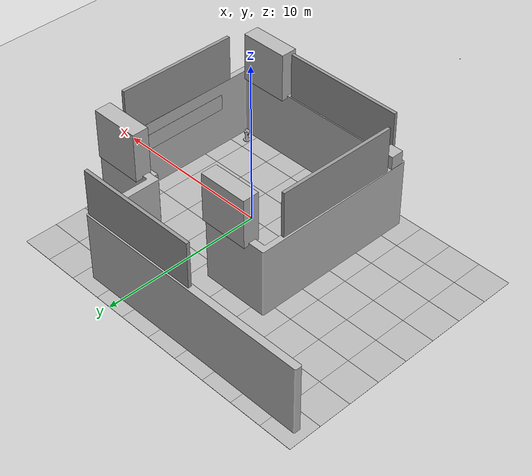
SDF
<sdf version="1.6">
 <world name="default">
  <light name="sun" type="directional">
   <pose>0 0 10 0 -0 0</pose>
   <diffuse>0.8 0.8 0.8 1</diffuse>
   <specular>0.2 0.2 0.2 1</specular>
   <attenuation>
    <range>1000</range>
    <constant>0.9</constant>
    <linear>0.01</linear>
    <quadratic>0.001</quadratic>
   </attenuation>
   <direction>-0.5 0.1 -0.9</direction>
  </light>
  <model name="ground_plane">
   <static>1</static>
   <link name="link">
    <collision name="collision">
     <geometry><plane><normal>0 0 1</normal><size>100 100</size></plane></geometry>
     <surface><friction><ode><mu>100</mu><mu2>50</mu2></ode></friction></surface>
    </collision>
    <visual name="visual">
     <cast_shadows>0</cast_shadows>
     <geometry><plane><normal>0 0 1</normal><size>100 100</size></plane></geometry>
     <material>
      <script><uri>file://media/materials/scripts/gazebo.material</uri><name>Gazebo/Grey</name></script>
     </material>
    </visual>
   </link>
  </model>
  <gravity>0 0 -9.8</gravity>
  <magnetic_field>6e-06 2.3e-05 -4.2e-05</magnetic_field>
  <atmosphere type="adiabatic"/>
  <physics name="default_physics" default="0" type="ode">
   <gravity>0 0 -9.8066</gravity>
   <ode>
    <solver>
     <type>quick</type>
     <iters>10</iters>
     <sor>1.3</sor>
     <use_dynamic_moi_rescaling>0</use_dynamic_moi_rescaling>
    </solver>
    <constraints>
     <cfm>0</cfm>
     <erp>0.2</erp>
     <contact_max_correcting_vel>100</contact_max_correcting_vel>
     <contact_surface_layer>0.001</contact_surface_layer>
    </constraints>
   </ode>
   <max_step_size>0.002</max_step_size>
   <real_time_factor>1</real_time_factor>
   <real_time_update_rate>500</real_time_update_rate>
   <magnetic_field>6.0e-6 2.3e-5 -4.2e-5</magnetic_field>
  </physics>
  <scene><ambient>0.4 0.4 0.4 1</ambient><background>0.7 0.7 0.7 1</background><shadows>1</shadows></scene>
  <spherical_coordinates>
   <surface_model>EARTH_WGS84</surface_model>
   <latitude_deg>0</latitude_deg>
   <longitude_deg>0</longitude_deg>
   <elevation>0</elevation>
   <heading_deg>0</heading_deg>
  </spherical_coordinates>
  <model name="Starting Pen">
   <static>1</static>
   <link name="link">
    <collision name="wall_01">
     <pose>-0 0 2.14 0 -0 0</pose>
     <geometry><box><size>12.15 0.31 4.28</size></box></geometry>
    </collision>
    <collision name="wall_02">
     <pose>-5.28 14.3205 2.14 0 -0 0</pose>
     <geometry><box><size>14.8 0.46 4.28</size></box></geometry>
    </collision>
    <collision name="wall_03">
     <pose>-5.91 5 2.14 0 -0 0</pose>
     <geometry><box><size>0.385 10.3 4.28</size></box></geometry>
    </collision>
    <collision name="wall_04">
     <pose>5.91 5.161 2.14 0 -0 0</pose>
     <geometry><box><size>0.385 10.66 4.28</size></box></geometry>
    </collision>
    <collision name="wall_05">
     <pose>3.9 10.285 2.14 0 -0 0</pose>
     <geometry><box><size>4.38 0.45 4.28</size></box></geometry>
    </collision>
    <collision name="wall_06">
     <pose>-4 9.95 2.14 0 -0 0</pose>
     <geometry><box><size>4.25 0.45 4.28</size></box></geometry>
    </collision>
    <collision name="wall_07">
     <pose>1.94 12.3 2.14 0 -0 0</pose>
     <geometry><box><size>0.45 4.5 4.28</size></box></geometry>
    </collision>
    <collision name="wall_arrow">
     <pose>-0.232 14.03 2.46 0 -0 0</pose>
     <geometry><box><size>3.33 0.12 1.16</size></box></geometry>
    </collision>
    <collision name="collision_floor">
     <pose>-3.21 7.355 0 0 -0 0</pose>
     <geometry><box><size>20 16 0.01</size></box></geometry>
     <surface><friction><ode><mu>100</mu><mu2>50</mu2></ode></friction></surface>
    </collision>
    <visual name="visual_osrf">
     <pose>-5.74 4.99 3 0 -0 0</pose>
     <geometry><box><size>0.01 6 1</size></box></geometry>
     <material>
      <script>
       <uri>model://starting_pen/materials/scripts</uri>
       <uri>model://starting_pen/materials/textures</uri>
       <name>StartingPen/OSRF</name>
      </script>
     </material>
    </visual>
    <visual name="visual_osrf_2">
     <pose>5.74 4.99 3 0 -0 0</pose>
     <geometry><box><size>0.01 6 1</size></box></geometry>
     <material>
      <script>
       <uri>model://starting_pen/materials/scripts</uri>
       <uri>model://starting_pen/materials/textures</uri>
       <name>StartingPen/OSRF</name>
      </script>
     </material>
    </visual>
    <visual name="visual">
     <geometry><mesh><uri>model://starting_pen/meshes/starting_pen.dae</uri></mesh></geometry>
    </visual>
    <visual name="visual_floor_0">
     <pose>-12.21 0.35 0 0 -0 0</pose>
     <geometry><box><size>2 2 0.01</size></box></geometry>
     <material>
      <script>
       <uri>model://starting_pen/materials/scripts</uri>
       <uri>model://starting_pen/materials/textures</uri>
       <name>StartingPen/Floor</name>
      </script>
     </material>
    </visual>
    <visual name="visual_floor_1">
     <pose>-10.21 0.35 0 0 -0 0</pose>
     <geometry><box><size>2 2 0.01</size></box></geometry>
     <material>
      <script>
       <uri>model://starting_pen/materials/scripts</uri>
       <uri>model://starting_pen/materials/textures</uri>
       <name>StartingPen/Floor</name>
      </script>
     </material>
    </visual>
    <visual name="visual_floor_2">
     <pose>-8.21 0.35 0 0 -0 0</pose>
     <geometry><box><size>2 2 0.01</size></box></geometry>
     <material>
      <script>
       <uri>model://starting_pen/materials/scripts</uri>
       <uri>model://starting_pen/materials/textures</uri>
       <name>StartingPen/Floor</name>
      </script>
     </material>
    </visual>
    <visual name="visual_floor_3">
     <pose>-6.21 0.35 0 0 -0 0</pose>
     <geometry><box><size>2 2 0.01</size></box></geometry>
     <material>
      <script>
       <uri>model://starting_pen/materials/scripts</uri>
       <uri>model://starting_pen/materials/textures</uri>
       <name>StartingPen/Floor</name>
      </script>
     </material>
    </visual>
    <visual name="visual_floor_4">
     <pose>-4.21 0.35 0 0 -0 0</pose>
     <geometry><box><size>2 2 0.01</size></box></geometry>
     <material>
      <script>
       <uri>model://starting_pen/materials/scripts</uri>
       <uri>model://starting_pen/materials/textures</uri>
       <name>StartingPen/Floor</name>
      </script>
     </material>
    </visual>
    <visual name="visual_floor_5">
     <pose>-2.21 0.35 0 0 -0 0</pose>
     <geometry><box><size>2 2 0.01</size></box></geometry>
     <material>
      <script>
       <uri>model://starting_pen/materials/scripts</uri>
       <uri>model://starting_pen/materials/textures</uri>
       <name>StartingPen/Floor</name>
      </script>
     </material>
    </visual>
    <visual name="visual_floor_6">
     <pose>-0.21 0.35 0 0 -0 0</pose>
     <geometry><box><size>2 2 0.01</size></box></geometry>
     <material>
      <script>
       <uri>model://starting_pen/materials/scripts</uri>
       <uri>model://starting_pen/materials/textures</uri>
       <name>StartingPen/Floor</name>
      </script>
     </material>
    </visual>
    <visual name="visual_floor_7">
     <pose>1.79 0.35 0 0 -0 1.5707</pose>
     <geometry><box><size>2 2 0.01</size></box></geometry>
     <material>
      <script>
       <uri>model://starting_pen/materials/scripts</uri>
       <uri>model://starting_pen/materials/textures</uri>
       <name>StartingPen/FloorStripped</name>
      </script>
     </material>
    </visual>
    <visual name="visual_floor_8">
     <pose>3.79 0.35 0 0 -0 0</pose>
     <geometry><box><size>2 2 0.01</size></box></geometry>
     <material>
      <script>
       <uri>model://starting_pen/materials/scripts</uri>
       <uri>model://starting_pen/materials/textures</uri>
       <name>StartingPen/Floor</name>
      </script>
     </material>
    </visual>
    <visual name="visual_floor_9">
     <pose>5.79 0.35 0 0 -0 0</pose>
     <geometry><box><size>2 2 0.01</size></box></geometry>
     <material>
      <script>
       <uri>model://starting_pen/materials/scripts</uri>
       <uri>model://starting_pen/materials/textures</uri>
       <name>StartingPen/Floor</name>
      </script>
     </material>
    </visual>
    <visual name="visual_floor_10">
     <pose>-12.21 2.35 0 0 -0 1.5707</pose>
     <geometry><box><size>2 2 0.01</size></box></geometry>
     <material>
      <script>
       <uri>model://starting_pen/materials/scripts</uri>
       <uri>model://starting_pen/materials/textures</uri>
       <name>StartingPen/FloorStripped</name>
      </script>
     </material>
    </visual>
    <visual name="visual_floor_11">
     <pose>-10.21 2.35 0 0 -0 0</pose>
     <geometry><box><size>2 2 0.01</size></box></geometry>
     <material>
      <script>
       <uri>model://starting_pen/materials/scripts</uri>
       <uri>model://starting_pen/materials/textures</uri>
       <name>StartingPen/Floor</name>
      </script>
     </material>
    </visual>
    <visual name="visual_floor_12">
     <pose>-8.21 2.35 0 0 -0 0</pose>
     <geometry><box><size>2 2 0.01</size></box></geometry>
     <material>
      <script>
       <uri>model://starting_pen/materials/scripts</uri>
       <uri>model://starting_pen/materials/textures</uri>
       <name>StartingPen/Floor</name>
      </script>
     </material>
    </visual>
    <visual name="visual_floor_13">
     <pose>-6.21 2.35 0 0 -0 0</pose>
     <geometry><box><size>2 2 0.01</size></box></geometry>
     <material>
      <script>
       <uri>model://starting_pen/materials/scripts</uri>
       <uri>model://starting_pen/materials/textures</uri>
       <name>StartingPen/Floor</name>
      </script>
     </material>
    </visual>
    <visual name="visual_floor_14">
     <pose>-4.21 2.35 0 0 -0 0</pose>
     <geometry><box><size>2 2 0.01</size></box></geometry>
     <material>
      <script>
       <uri>model://starting_pen/materials/scripts</uri>
       <uri>model://starting_pen/materials/textures</uri>
       <name>StartingPen/Floor</name>
      </script>
     </material>
    </visual>
    <visual name="visual_floor_15">
     <pose>-2.21 2.35 0 0 -0 0</pose>
     <geometry><box><size>2 2 0.01</size></box></geometry>
     <material>
      <script>
       <uri>model://starting_pen/materials/scripts</uri>
       <uri>model://starting_pen/materials/textures</uri>
       <name>StartingPen/Floor</name>
      </script>
     </material>
    </visual>
    <visual name="visual_floor_16">
     <pose>-0.21 2.35 0 0 -0 1.5707</pose>
     <geometry><box><size>2 2 0.01</size></box></geometry>
     <material>
      <script>
       <uri>model://starting_pen/materials/scripts</uri>
       <uri>model://starting_pen/materials/textures</uri>
       <name>StartingPen/FloorStripped</name>
      </script>
     </material>
    </visual>
    <visual name="visual_floor_17">
     <pose>1.79 2.35 0 0 -0 1.5707</pose>
     <geometry><box><size>2 2 0.01</size></box></geometry>
     <material>
      <script>
       <uri>model://starting_pen/materials/scripts</uri>
       <uri>model://starting_pen/materials/textures</uri>
       <name>StartingPen/Floor</name>
      </script>
     </material>
    </visual>
    <visual name="visual_floor_18">
     <pose>3.79 2.35 0 0 -0 0</pose>
     <geometry><box><size>2 2 0.01</size></box></geometry>
     <material>
      <script>
       <uri>model://starting_pen/materials/scripts</uri>
       <uri>model://starting_pen/materials/textures</uri>
       <name>StartingPen/Floor</name>
      </script>
     </material>
    </visual>
    <visual name="visual_floor_19">
     <pose>5.79 2.35 0 0 -0 0</pose>
     <geometry><box><size>2 2 0.01</size></box></geometry>
     <material>
      <script>
       <uri>model://starting_pen/materials/scripts</uri>
       <uri>model://starting_pen/materials/textures</uri>
       <name>StartingPen/Floor</name>
      </script>
     </material>
    </visual>
    <visual name="visual_floor_20">
     <pose>-12.21 4.35 0 0 -0 0</pose>
     <geometry><box><size>2 2 0.01</size></box></geometry>
     <material>
      <script>
       <uri>model://starting_pen/materials/scripts</uri>
       <uri>model://starting_pen/materials/textures</uri>
       <name>StartingPen/Floor</name>
      </script>
     </material>
    </visual>
    <visual name="visual_floor_21">
     <pose>-10.21 4.35 0 0 -0 0</pose>
     <geometry><box><size>2 2 0.01</size></box></geometry>
     <material>
      <script>
       <uri>model://starting_pen/materials/scripts</uri>
       <uri>model://starting_pen/materials/textures</uri>
       <name>StartingPen/Floor</name>
      </script>
     </material>
    </visual>
    <visual name="visual_floor_22">
     <pose>-8.21 4.35 0 0 -0 1.5707</pose>
     <geometry><box><size>2 2 0.01</size></box></geometry>
     <material>
      <script>
       <uri>model://starting_pen/materials/scripts</uri>
       <uri>model://starting_pen/materials/textures</uri>
       <name>StartingPen/FloorStripped</name>
      </script>
     </material>
    </visual>
    <visual name="visual_floor_23">
     <pose>-6.21 4.35 0 0 -0 0</pose>
     <geometry><box><size>2 2 0.01</size></box></geometry>
     <material>
      <script>
       <uri>model://starting_pen/materials/scripts</uri>
       <uri>model://starting_pen/materials/textures</uri>
       <name>StartingPen/Floor</name>
      </script>
     </material>
    </visual>
    <visual name="visual_floor_24">
     <pose>-4.21 4.35 0 0 -0 0</pose>
     <geometry><box><size>2 2 0.01</size></box></geometry>
     <material>
      <script>
       <uri>model://starting_pen/materials/scripts</uri>
       <uri>model://starting_pen/materials/textures</uri>
       <name>StartingPen/Floor</name>
      </script>
     </material>
    </visual>
    <visual name="visual_floor_25">
     <pose>-2.21 4.35 0 0 -0 0</pose>
     <geometry><box><size>2 2 0.01</size></box></geometry>
     <material>
      <script>
       <uri>model://starting_pen/materials/scripts</uri>
       <uri>model://starting_pen/materials/textures</uri>
       <name>StartingPen/Floor</name>
      </script>
     </material>
    </visual>
    <visual name="visual_floor_26">
     <pose>-0.21 4.35 0 0 -0 0</pose>
     <geometry><box><size>2 2 0.01</size></box></geometry>
     <material>
      <script>
       <uri>model://starting_pen/materials/scripts</uri>
       <uri>model://starting_pen/materials/textures</uri>
       <name>StartingPen/Floor</name>
      </script>
     </material>
    </visual>
    <visual name="visual_floor_27">
     <pose>1.79 4.35 0 0 -0 0</pose>
     <geometry><box><size>2 2 0.01</size></box></geometry>
     <material>
      <script>
       <uri>model://starting_pen/materials/scripts</uri>
       <uri>model://starting_pen/materials/textures</uri>
       <name>StartingPen/Floor</name>
      </script>
     </material>
    </visual>
    <visual name="visual_floor_28">
     <pose>3.79 4.35 0 0 -0 0</pose>
     <geometry><box><size>2 2 0.01</size></box></geometry>
     <material>
      <script>
       <uri>model://starting_pen/materials/scripts</uri>
       <uri>model://starting_pen/materials/textures</uri>
       <name>StartingPen/Floor</name>
      </script>
     </material>
    </visual>
    <visual name="visual_floor_29">
     <pose>5.79 4.35 0 0 -0 1.5707</pose>
     <geometry><box><size>2 2 0.01</size></box></geometry>
     <material>
      <script>
       <uri>model://starting_pen/materials/scripts</uri>
       <uri>model://starting_pen/materials/textures</uri>
       <name>StartingPen/FloorStripped</name>
      </script>
     </material>
    </visual>
    <visual name="visual_floor_30">
     <pose>-12.21 6.35 0 0 -0 0</pose>
     <geometry><box><size>2 2 0.01</size></box></geometry>
     <material>
      <script>
       <uri>model://starting_pen/materials/scripts</uri>
       <uri>model://starting_pen/materials/textures</uri>
       <name>StartingPen/Floor</name>
      </script>
     </material>
    </visual>
    <visual name="visual_floor_31">
     <pose>-10.21 6.35 0 0 -0 0</pose>
     <geometry><box><size>2 2 0.01</size></box></geometry>
     <material>
      <script>
       <uri>model://starting_pen/materials/scripts</uri>
       <uri>model://starting_pen/materials/textures</uri>
       <name>StartingPen/Floor</name>
      </script>
     </material>
    </visual>
    <visual name="visual_floor_32">
     <pose>-8.21 6.35 0 0 -0 0</pose>
     <geometry><box><size>2 2 0.01</size></box></geometry>
     <material>
      <script>
       <uri>model://starting_pen/materials/scripts</uri>
       <uri>model://starting_pen/materials/textures</uri>
       <name>StartingPen/Floor</name>
      </script>
     </material>
    </visual>
    <visual name="visual_floor_33">
     <pose>-6.21 6.35 0 0 -0 1.5707</pose>
     <geometry><box><size>2 2 0.01</size></box></geometry>
     <material>
      <script>
       <uri>model://starting_pen/materials/scripts</uri>
       <uri>model://starting_pen/materials/textures</uri>
       <name>StartingPen/FloorStripped</name>
      </script>
     </material>
    </visual>
    <visual name="visual_floor_34">
     <pose>-4.21 6.35 0 0 -0 0</pose>
     <geometry><box><size>2 2 0.01</size></box></geometry>
     <material>
      <script>
       <uri>model://starting_pen/materials/scripts</uri>
       <uri>model://starting_pen/materials/textures</uri>
       <name>StartingPen/Floor</name>
      </script>
     </material>
    </visual>
    <visual name="visual_floor_35">
     <pose>-2.21 6.35 0 0 -0 1.5707</pose>
     <geometry><box><size>2 2 0.01</size></box></geometry>
     <material>
      <script>
       <uri>model://starting_pen/materials/scripts</uri>
       <uri>model://starting_pen/materials/textures</uri>
       <name>StartingPen/FloorStripped</name>
      </script>
     </material>
    </visual>
    <visual name="visual_floor_36">
     <pose>-0.21 6.35 0 0 -0 0</pose>
     <geometry><box><size>2 2 0.01</size></box></geometry>
     <material>
      <script>
       <uri>model://starting_pen/materials/scripts</uri>
       <uri>model://starting_pen/materials/textures</uri>
       <name>StartingPen/Floor</name>
      </script>
     </material>
    </visual>
    <visual name="visual_floor_37">
     <pose>1.79 6.35 0 0 -0 0</pose>
     <geometry><box><size>2 2 0.01</size></box></geometry>
     <material>
      <script>
       <uri>model://starting_pen/materials/scripts</uri>
       <uri>model://starting_pen/materials/textures</uri>
       <name>StartingPen/Floor</name>
      </script>
     </material>
    </visual>
    <visual name="visual_floor_38">
     <pose>3.79 6.35 0 0 -0 0</pose>
     <geometry><box><size>2 2 0.01</size></box></geometry>
     <material>
      <script>
       <uri>model://starting_pen/materials/scripts</uri>
       <uri>model://starting_pen/materials/textures</uri>
       <name>StartingPen/Floor</name>
      </script>
     </material>
    </visual>
    <visual name="visual_floor_39">
     <pose>5.79 6.35 0 0 -0 0</pose>
     <geometry><box><size>2 2 0.01</size></box></geometry>
     <material>
      <script>
       <uri>model://starting_pen/materials/scripts</uri>
       <uri>model://starting_pen/materials/textures</uri>
       <name>StartingPen/Floor</name>
      </script>
     </material>
    </visual>
    <visual name="visual_floor_40">
     <pose>-12.21 8.35 0 0 -0 0</pose>
     <geometry><box><size>2 2 0.01</size></box></geometry>
     <material>
      <script>
       <uri>model://starting_pen/materials/scripts</uri>
       <uri>model://starting_pen/materials/textures</uri>
       <name>StartingPen/Floor</name>
      </script>
     </material>
    </visual>
    <visual name="visual_floor_41">
     <pose>-10.21 8.35 0 0 -0 0</pose>
     <geometry><box><size>2 2 0.01</size></box></geometry>
     <material>
      <script>
       <uri>model://starting_pen/materials/scripts</uri>
       <uri>model://starting_pen/materials/textures</uri>
       <name>StartingPen/Floor</name>
      </script>
     </material>
    </visual>
    <visual name="visual_floor_42">
     <pose>-8.21 8.35 0 0 -0 1.5707</pose>
     <geometry><box><size>2 2 0.01</size></box></geometry>
     <material>
      <script>
       <uri>model://starting_pen/materials/scripts</uri>
       <uri>model://starting_pen/materials/textures</uri>
       <name>StartingPen/FloorStripped</name>
      </script>
     </material>
    </visual>
    <visual name="visual_floor_43">
     <pose>-6.21 8.35 0 0 -0 0</pose>
     <geometry><box><size>2 2 0.01</size></box></geometry>
     <material>
      <script>
       <uri>model://starting_pen/materials/scripts</uri>
       <uri>model://starting_pen/materials/textures</uri>
       <name>StartingPen/Floor</name>
      </script>
     </material>
    </visual>
    <visual name="visual_floor_44">
     <pose>-4.21 8.35 0 0 -0 0</pose>
     <geometry><box><size>2 2 0.01</size></box></geometry>
     <material>
      <script>
       <uri>model://starting_pen/materials/scripts</uri>
       <uri>model://starting_pen/materials/textures</uri>
       <name>StartingPen/Floor</name>
      </script>
     </material>
    </visual>
    <visual name="visual_floor_45">
     <pose>-2.21 8.35 0 0 -0 0</pose>
     <geometry><box><size>2 2 0.01</size></box></geometry>
     <material>
      <script>
       <uri>model://starting_pen/materials/scripts</uri>
       <uri>model://starting_pen/materials/textures</uri>
       <name>StartingPen/Floor</name>
      </script>
     </material>
    </visual>
    <visual name="visual_floor_46">
     <pose>-0.21 8.35 0 0 -0 1.5707</pose>
     <geometry><box><size>2 2 0.01</size></box></geometry>
     <material>
      <script>
       <uri>model://starting_pen/materials/scripts</uri>
       <uri>model://starting_pen/materials/textures</uri>
       <name>StartingPen/FloorStripped</name>
      </script>
     </material>
    </visual>
    <visual name="visual_floor_47">
     <pose>1.79 8.35 0 0 -0 0</pose>
     <geometry><box><size>2 2 0.01</size></box></geometry>
     <material>
      <script>
       <uri>model://starting_pen/materials/scripts</uri>
       <uri>model://starting_pen/materials/textures</uri>
       <name>StartingPen/Floor</name>
      </script>
     </material>
    </visual>
    <visual name="visual_floor_48">
     <pose>3.79 8.35 0 0 -0 0</pose>
     <geometry><box><size>2 2 0.01</size></box></geometry>
     <material>
      <script>
       <uri>model://starting_pen/materials/scripts</uri>
       <uri>model://starting_pen/materials/textures</uri>
       <name>StartingPen/Floor</name>
      </script>
     </material>
    </visual>
    <visual name="visual_floor_49">
     <pose>5.79 8.35 0 0 -0 0</pose>
     <geometry><box><size>2 2 0.01</size></box></geometry>
     <material>
      <script>
       <uri>model://starting_pen/materials/scripts</uri>
       <uri>model://starting_pen/materials/textures</uri>
       <name>StartingPen/Floor</name>
      </script>
     </material>
    </visual>
    <visual name="visual_floor_50">
     <pose>-12.21 10.35 0 0 -0 0</pose>
     <geometry><box><size>2 2 0.01</size></box></geometry>
     <material>
      <script>
       <uri>model://starting_pen/materials/scripts</uri>
       <uri>model://starting_pen/materials/textures</uri>
       <name>StartingPen/Floor</name>
      </script>
     </material>
    </visual>
    <visual name="visual_floor_51">
     <pose>-10.21 10.35 0 0 -0 0</pose>
     <geometry><box><size>2 2 0.01</size></box></geometry>
     <material>
      <script>
       <uri>model://starting_pen/materials/scripts</uri>
       <uri>model://starting_pen/materials/textures</uri>
       <name>StartingPen/Floor</name>
      </script>
     </material>
    </visual>
    <visual name="visual_floor_52">
     <pose>-8.21 10.35 0 0 -0 0</pose>
     <geometry><box><size>2 2 0.01</size></box></geometry>
     <material>
      <script>
       <uri>model://starting_pen/materials/scripts</uri>
       <uri>model://starting_pen/materials/textures</uri>
       <name>StartingPen/Floor</name>
      </script>
     </material>
    </visual>
    <visual name="visual_floor_53">
     <pose>-6.21 10.35 0 0 -0 1.5707</pose>
     <geometry><box><size>2 2 0.01</size></box></geometry>
     <material>
      <script>
       <uri>model://starting_pen/materials/scripts</uri>
       <uri>model://starting_pen/materials/textures</uri>
       <name>StartingPen/FloorStripped</name>
      </script>
     </material>
    </visual>
    <visual name="visual_floor_54">
     <pose>-4.21 10.35 0 0 -0 0</pose>
     <geometry><box><size>2 2 0.01</size></box></geometry>
     <material>
      <script>
       <uri>model://starting_pen/materials/scripts</uri>
       <uri>model://starting_pen/materials/textures</uri>
       <name>StartingPen/Floor</name>
      </script>
     </material>
    </visual>
    <visual name="visual_floor_55">
     <pose>-2.21 10.35 0 0 -0 0</pose>
     <geometry><box><size>2 2 0.01</size></box></geometry>
     <material>
      <script>
       <uri>model://starting_pen/materials/scripts</uri>
       <uri>model://starting_pen/materials/textures</uri>
       <name>StartingPen/Floor</name>
      </script>
     </material>
    </visual>
    <visual name="visual_floor_56">
     <pose>-0.21 10.35 0 0 -0 0</pose>
     <geometry><box><size>2 2 0.01</size></box></geometry>
     <material>
      <script>
       <uri>model://starting_pen/materials/scripts</uri>
       <uri>model://starting_pen/materials/textures</uri>
       <name>StartingPen/Floor</name>
      </script>
     </material>
    </visual>
    <visual name="visual_floor_57">
     <pose>1.79 10.35 0 0 -0 0</pose>
     <geometry><box><size>2 2 0.01</size></box></geometry>
     <material>
      <script>
       <uri>model://starting_pen/materials/scripts</uri>
       <uri>model://starting_pen/materials/textures</uri>
       <name>StartingPen/Floor</name>
      </script>
     </material>
    </visual>
    <visual name="visual_floor_58">
     <pose>3.79 10.35 0 0 -0 0</pose>
     <geometry><box><size>2 2 0.01</size></box></geometry>
     <material>
      <script>
       <uri>model://starting_pen/materials/scripts</uri>
       <uri>model://starting_pen/materials/textures</uri>
       <name>StartingPen/Floor</name>
      </script>
     </material>
    </visual>
    <visual name="visual_floor_59">
     <pose>5.79 10.35 0 0 -0 0</pose>
     <geometry><box><size>2 2 0.01</size></box></geometry>
     <material>
      <script>
       <uri>model://starting_pen/materials/scripts</uri>
       <uri>model://starting_pen/materials/textures</uri>
       <name>StartingPen/Floor</name>
      </script>
     </material>
    </visual>
    <visual name="visual_floor_60">
     <pose>-12.21 12.35 0 0 -0 1.5707</pose>
     <geometry><box><size>2 2 0.01</size></box></geometry>
     <material>
      <script>
       <uri>model://starting_pen/materials/scripts</uri>
       <uri>model://starting_pen/materials/textures</uri>
       <name>StartingPen/FloorStripped</name>
      </script>
     </material>
    </visual>
    <visual name="visual_floor_61">
     <pose>-10.21 12.35 0 0 -0 0</pose>
     <geometry><box><size>2 2 0.01</size></box></geometry>
     <material>
      <script>
       <uri>model://starting_pen/materials/scripts</uri>
       <uri>model://starting_pen/materials/textures</uri>
       <name>StartingPen/Floor</name>
      </script>
     </material>
    </visual>
    <visual name="visual_floor_62">
     <pose>-8.21 12.35 0 0 -0 0</pose>
     <geometry><box><size>2 2 0.01</size></box></geometry>
     <material>
      <script>
       <uri>model://starting_pen/materials/scripts</uri>
       <uri>model://starting_pen/materials/textures</uri>
       <name>StartingPen/Floor</name>
      </script>
     </material>
    </visual>
    <visual name="visual_floor_63">
     <pose>-6.21 12.35 0 0 -0 0</pose>
     <geometry><box><size>2 2 0.01</size></box></geometry>
     <material>
      <script>
       <uri>model://starting_pen/materials/scripts</uri>
       <uri>model://starting_pen/materials/textures</uri>
       <name>StartingPen/Floor</name>
      </script>
     </material>
    </visual>
    <visual name="visual_floor_64">
     <pose>-4.21 12.35 0 0 -0 0</pose>
     <geometry><box><size>2 2 0.01</size></box></geometry>
     <material>
      <script>
       <uri>model://starting_pen/materials/scripts</uri>
       <uri>model://starting_pen/materials/textures</uri>
       <name>StartingPen/Floor</name>
      </script>
     </material>
    </visual>
    <visual name="visual_floor_65">
     <pose>-2.21 12.35 0 0 -0 1.5707</pose>
     <geometry><box><size>2 2 0.01</size></box></geometry>
     <material>
      <script>
       <uri>model://starting_pen/materials/scripts</uri>
       <uri>model://starting_pen/materials/textures</uri>
       <name>StartingPen/FloorStripped</name>
      </script>
     </material>
    </visual>
    <visual name="visual_floor_66">
     <pose>-0.21 12.35 0 0 -0 0</pose>
     <geometry><box><size>2 2 0.01</size></box></geometry>
     <material>
      <script>
       <uri>model://starting_pen/materials/scripts</uri>
       <uri>model://starting_pen/materials/textures</uri>
       <name>StartingPen/Floor</name>
      </script>
     </material>
    </visual>
    <visual name="visual_floor_67">
     <pose>1.79 12.35 0 0 -0 0</pose>
     <geometry><box><size>2 2 0.01</size></box></geometry>
     <material>
      <script>
       <uri>model://starting_pen/materials/scripts</uri>
       <uri>model://starting_pen/materials/textures</uri>
       <name>StartingPen/Floor</name>
      </script>
     </material>
    </visual>
    <visual name="visual_floor_68">
     <pose>3.79 12.35 0 0 -0 0</pose>
     <geometry><box><size>2 2 0.01</size></box></geometry>
     <material>
      <script>
       <uri>model://starting_pen/materials/scripts</uri>
       <uri>model://starting_pen/materials/textures</uri>
       <name>StartingPen/Floor</name>
      </script>
     </material>
    </visual>
    <visual name="visual_floor_69">
     <pose>5.79 12.35 0 0 -0 0</pose>
     <geometry><box><size>2 2 0.01</size></box></geometry>
     <material>
      <script>
       <uri>model://starting_pen/materials/scripts</uri>
       <uri>model://starting_pen/materials/textures</uri>
       <name>StartingPen/Floor</name>
      </script>
     </material>
    </visual>
    <visual name="visual_floor_70">
     <pose>-12.21 14.35 0 0 -0 0</pose>
     <geometry><box><size>2 2 0.01</size></box></geometry>
     <material>
      <script>
       <uri>model://starting_pen/materials/scripts</uri>
       <uri>model://starting_pen/materials/textures</uri>
       <name>StartingPen/Floor</name>
      </script>
     </material>
    </visual>
    <visual name="visual_floor_71">
     <pose>-10.21 14.35 0 0 -0 0</pose>
     <geometry><box><size>2 2 0.01</size></box></geometry>
     <material>
      <script>
       <uri>model://starting_pen/materials/scripts</uri>
       <uri>model://starting_pen/materials/textures</uri>
       <name>StartingPen/Floor</name>
      </script>
     </material>
    </visual>
    <visual name="visual_floor_72">
     <pose>-8.21 14.35 0 0 -0 0</pose>
     <geometry><box><size>2 2 0.01</size></box></geometry>
     <material>
      <script>
       <uri>model://starting_pen/materials/scripts</uri>
       <uri>model://starting_pen/materials/textures</uri>
       <name>StartingPen/Floor</name>
      </script>
     </material>
    </visual>
    <visual name="visual_floor_73">
     <pose>-6.21 14.35 0 0 -0 0</pose>
     <geometry><box><size>2 2 0.01</size></box></geometry>
     <material>
      <script>
       <uri>model://starting_pen/materials/scripts</uri>
       <uri>model://starting_pen/materials/textures</uri>
       <name>StartingPen/Floor</name>
      </script>
     </material>
    </visual>
    <visual name="visual_floor_74">
     <pose>-4.21 14.35 0 0 -0 1.5707</pose>
     <geometry><box><size>2 2 0.01</size></box></geometry>
     <material>
      <script>
       <uri>model://starting_pen/materials/scripts</uri>
       <uri>model://starting_pen/materials/textures</uri>
       <name>StartingPen/FloorStripped</name>
      </script>
     </material>
    </visual>
    <visual name="visual_floor_75">
     <pose>-2.21 14.35 0 0 -0 1.5707</pose>
     <geometry><box><size>2 2 0.01</size></box></geometry>
     <material>
      <script>
       <uri>model://starting_pen/materials/scripts</uri>
       <uri>model://starting_pen/materials/textures</uri>
       <name>StartingPen/Floor</name>
      </script>
     </material>
    </visual>
    <visual name="visual_floor_76">
     <pose>-0.21 14.35 0 0 -0 0</pose>
     <geometry><box><size>2 2 0.01</size></box></geometry>
     <material>
      <script>
       <uri>model://starting_pen/materials/scripts</uri>
       <uri>model://starting_pen/materials/textures</uri>
       <name>StartingPen/Floor</name>
      </script>
     </material>
    </visual>
    <visual name="visual_floor_77">
     <pose>1.79 14.35 0 0 -0 0</pose>
     <geometry><box><size>2 2 0.01</size></box></geometry>
     <material>
      <script>
       <uri>model://starting_pen/materials/scripts</uri>
       <uri>model://starting_pen/materials/textures</uri>
       <name>StartingPen/Floor</name>
      </script>
     </material>
    </visual>
    <visual name="visual_floor_78">
     <pose>3.79 14.35 0 0 -0 0</pose>
     <geometry><box><size>2 2 0.01</size></box></geometry>
     <material>
      <script>
       <uri>model://starting_pen/materials/scripts</uri>
       <uri>model://starting_pen/materials/textures</uri>
       <name>StartingPen/FloorStripped</name>
      </script>
     </material>
    </visual>
    <visual name="visual_floor_79">
     <pose>5.79 14.35 0 0 -0 0</pose>
     <geometry><box><size>2 2 0.01</size></box></geometry>
     <material>
      <script>
       <uri>model://starting_pen/materials/scripts</uri>
       <uri>model://starting_pen/materials/textures</uri>
       <name>StartingPen/Floor</name>
      </script>
     </material>
    </visual>
   </link>
   <pose>0.214407 -5.35532 0 0 -0 0</pose>
  </model>
  <model name="grey_wall">
   <static>1</static>
   <link name="link">
    <pose>0 0 1.4 0 -0 0</pose>
    <collision name="collision"><geometry><box><size>7.5 0.2 2.8</size></box></geometry></collision>
    <visual name="visual">
     <cast_shadows>0</cast_shadows>
     <geometry><box><size>7.5 0.2 2.8</size></box></geometry>
     <material>
      <script>
       <uri>model://grey_wall/materials/scripts</uri>
       <uri>model://grey_wall/materials/textures</uri>
       <name>vrc/grey_wall</name>
      </script>
     </material>
    </visual>
   </link>
   <pose>-1.40169 -5.36966 4.27343 0 -0 0</pose>
  </model>
  <model name="stone_10_2_5_1cm">
   <link name="link">
    <pose>0 0 0.005 0 -0 0</pose>
    <inertial>
     <mass>0.0628</mass>
     <inertia>
      <ixx>3.79417e-06</ixx>
      <ixy>0</ixy>
      <ixz>0</ixz>
      <iyy>5.28567e-05</iyy>
      <iyz>0</iyz>
      <izz>5.56042e-05</izz>
     </inertia>
    </inertial>
    <collision name="collision">
     <geometry><box><size>0.1 0.025 0.01</size></box></geometry>
     <surface>
      <contact>
       <poissons_ratio>0.15</poissons_ratio>
       <elastic_modulus>8e+10</elastic_modulus>
       <ode><kp>100000</kp><kd>100</kd><max_vel>100</max_vel><min_depth>0.001</min_depth></ode>
      </contact>
      <friction>
       <torsional>
        <coefficient>1</coefficient>
        <use_patch_radius>0</use_patch_radius>
        <surface_radius>0.01</surface_radius>
       </torsional>
      </friction>
     </surface>
    </collision>
    <visual name="visual">
     <geometry><box><size>0.1 0.025 0.01</size></box></geometry>
     <material>
      <script><uri>file://media/materials/scripts/gazebo.material</uri><name>Gazebo/Grey</name></script>
     </material>
    </visual>
   </link>
   <pose>2 -20 -0.001002 0 -0 0</pose>
  </model>
  <model name="brick_box_3x1x3">
   <static>1</static>
   <link name="chassis">
    <pose>0 0 1.5 0 -0 0</pose>
    <collision name="collision"><geometry><box><size>3 1 3</size></box></geometry></collision>
    <visual name="visual">
     <geometry><mesh><uri>model://brick_box_3x1x3/meshes/simple_box.dae</uri><scale>3 1 3</scale></mesh></geometry>
     <material>
      <script>
       <uri>model://brick_box_3x1x3/materials/scripts</uri>
       <uri>model://brick_box_3x1x3/materials/textures</uri>
       <name>BrickBox/Diffuse</name>
      </script>
     </material>
    </visual>
   </link>
   <pose>4.0553 -5.29124 4.11017 0 -0 0</pose>
  </model>
  <model name="brick_box_3x1x3_clone">
   <static>1</static>
   <link name="chassis">
    <pose>0 0 1.5 0 -0 0</pose>
    <collision name="collision"><geometry><box><size>3 1 3</size></box></geometry></collision>
    <visual name="visual">
     <geometry><mesh><uri>model://brick_box_3x1x3/meshes/simple_box.dae</uri><scale>3 1 3</scale></mesh></geometry>
     <material>
      <script>
       <uri>model://brick_box_3x1x3/materials/scripts</uri>
       <uri>model://brick_box_3x1x3/materials/textures</uri>
       <name>BrickBox/Diffuse</name>
      </script>
     </material>
    </visual>
   </link>
   <pose>4.23815 5.11113 4.11017 0 -0 0</pose>
  </model>
  <model name="brick_box_3x1x3_clone_0">
   <static>1</static>
   <link name="chassis">
    <pose>0 0 1.5 0 -0 0</pose>
    <collision name="collision"><geometry><box><size>3 1 3</size></box></geometry></collision>
    <visual name="visual">
     <geometry><mesh><uri>model://brick_box_3x1x3/meshes/simple_box.dae</uri><scale>3 1 3</scale></mesh></geometry>
     <material>
      <script>
       <uri>model://brick_box_3x1x3/materials/scripts</uri>
       <uri>model://brick_box_3x1x3/materials/textures</uri>
       <name>BrickBox/Diffuse</name>
      </script>
     </material>
    </visual>
   </link>
   <pose>-3.3668 4.6456 4.11017 0 -0 0</pose>
  </model>
  <model name="grey_wall_clone">
   <static>1</static>
   <link name="link">
    <pose>0 0 1.4 0 -0 0</pose>
    <collision name="collision"><geometry><box><size>7.5 0.2 2.8</size></box></geometry></collision>
    <visual name="visual">
     <cast_shadows>0</cast_shadows>
     <geometry><box><size>7.5 0.2 2.8</size></box></geometry>
     <material>
      <script>
       <uri>model://grey_wall/materials/scripts</uri>
       <uri>model://grey_wall/materials/textures</uri>
       <name>vrc/grey_wall</name>
      </script>
     </material>
    </visual>
   </link>
   <pose>-5.69937 -0.452393 4.27343 0 0 -1.57907</pose>
  </model>
  <model name="grey_wall_clone_clone">
   <static>1</static>
   <link name="link">
    <pose>0 0 1.4 0 -0 0</pose>
    <collision name="collision"><geometry><box><size>7.5 0.2 2.8</size></box></geometry></collision>
    <visual name="visual">
     <cast_shadows>0</cast_shadows>
     <geometry><box><size>7.5 0.2 2.8</size></box></geometry>
     <material>
      <script>
       <uri>model://grey_wall/materials/scripts</uri>
       <uri>model://grey_wall/materials/textures</uri>
       <name>vrc/grey_wall</name>
      </script>
     </material>
    </visual>
   </link>
   <pose>6.07322 -0.278763 4.27343 0 0 -1.57907</pose>
  </model>
  <model name="grey_wall_clone_0">
   <static>1</static>
   <link name="link">
    <pose>0 0 1.4 0 -0 0</pose>
    <collision name="collision"><geometry><box><size>7.5 0.2 2.8</size></box></geometry></collision>
    <visual name="visual">
     <cast_shadows>0</cast_shadows>
     <geometry><box><size>7.5 0.2 2.8</size></box></geometry>
     <material>
      <script>
       <uri>model://grey_wall/materials/scripts</uri>
       <uri>model://grey_wall/materials/textures</uri>
       <name>vrc/grey_wall</name>
      </script>
     </material>
    </visual>
   </link>
   <pose>-1.45687 8.98577 4.27343 0 -0 0</pose>
  </model>
  <light name="user_directional_light_0" type="directional">
   <pose>-0.005434 0.389863 1 0 -0 0</pose>
   <diffuse>0.5 0.5 0.5 1</diffuse>
   <specular>0.1 0.1 0.1 1</specular>
   <direction>0.1 0.1 -0.9</direction>
   <attenuation>
    <range>20</range>
    <constant>0.5</constant>
    <linear>0.01</linear>
    <quadratic>0.001</quadratic>
   </attenuation>
  </light>
  <model name="number1">
   <pose>-5.47913 -4.86512 4.68057 0 -0 0</pose>
   <static>1</static>
   <link name="link">
    <visual name="visual">
     <geometry><mesh><uri>model://number1/meshes/number.dae</uri></mesh></geometry>
     <material>
      <script>
       <uri>model://number1/materials/scripts</uri>
       <uri>model://number1/materials/textures</uri>
       <name>Number/One</name>
      </script>
     </material>
    </visual>
   </link>
  </model>
  <model name="number2">
   <pose>-4.52761 3.13105 1.73438 0 -0 0</pose>
   <static>1</static>
   <link name="link">
    <visual name="visual">
     <geometry><mesh><uri>model://number1/meshes/number.dae</uri></mesh></geometry>
     <material>
      <script>
       <uri>model://number2/materials/scripts</uri>
       <uri>model://number2/materials/textures</uri>
       <name>Number/Two</name>
      </script>
     </material>
    </visual>
   </link>
  </model>
  <model name="number3">
   <pose>5.20964 3.92049 0.4 0 -0 0</pose>
   <static>1</static>
   <link name="link">
    <visual name="visual">
     <geometry><mesh><uri>model://number1/meshes/number.dae</uri></mesh></geometry>
     <material>
      <script>
       <uri>model://number3/materials/scripts</uri>
       <uri>model://number3/materials/textures</uri>
       <name>Number/Three</name>
      </script>
     </material>
    </visual>
   </link>
  </model>
  <model name="number4">
   <pose>4.54889 3.43154 1.97738 0 -0 0</pose>
   <static>1</static>
   <link name="link">
    <visual name="visual">
     <geometry><mesh><uri>model://number1/meshes/number.dae</uri></mesh></geometry>
     <material>
      <script>
       <uri>model://number4/materials/scripts</uri>
       <uri>model://number4/materials/textures</uri>
       <name>Number/Four</name>
      </script>
     </material>
    </visual>
   </link>
  </model>
  <model name="fire_hydrant">
   <static>1</static>
   <link name="link">
    <collision name="collision">
     <geometry><mesh><uri>model://fire_hydrant/meshes/fire_hydrant.dae</uri></mesh></geometry>
    </collision>
    <visual name="visual">
     <geometry><mesh><uri>model://fire_hydrant/meshes/fire_hydrant.dae</uri></mesh></geometry>
    </visual>
   </link>
   <pose>5.18184 -4.55147 0 0 -0 0</pose>
  </model>
 </world>
</sdf>
